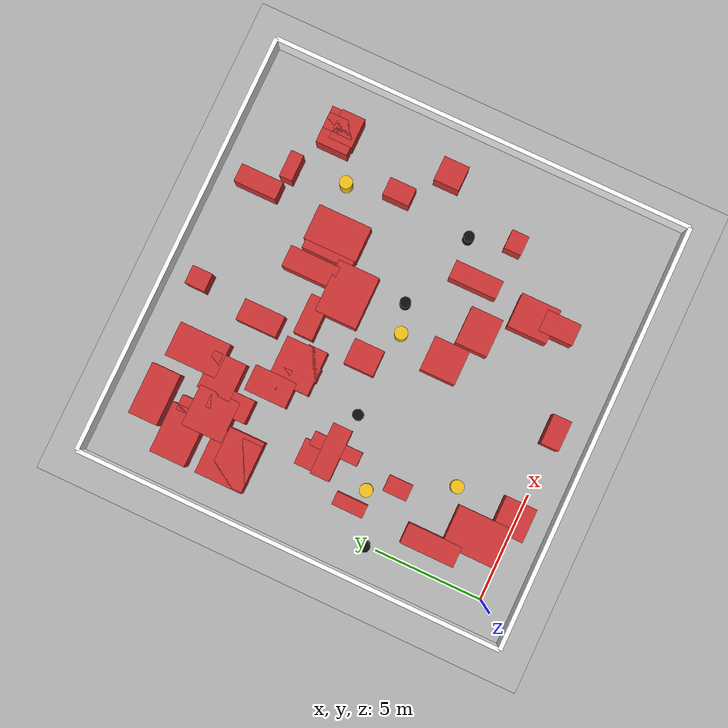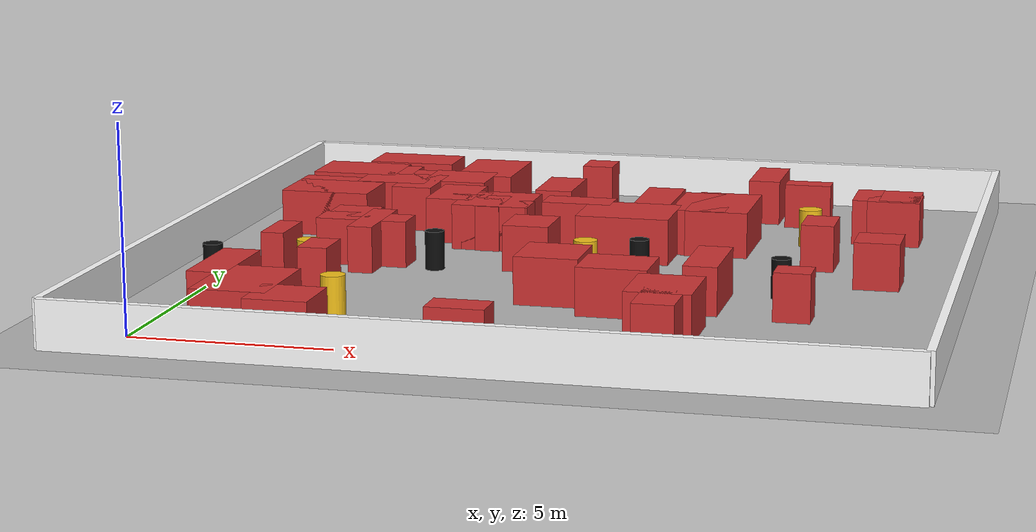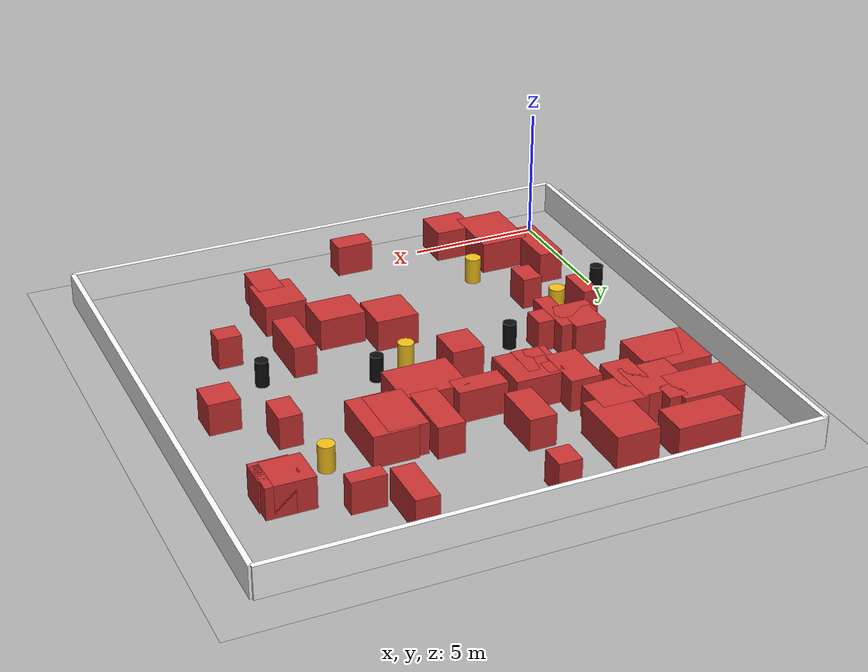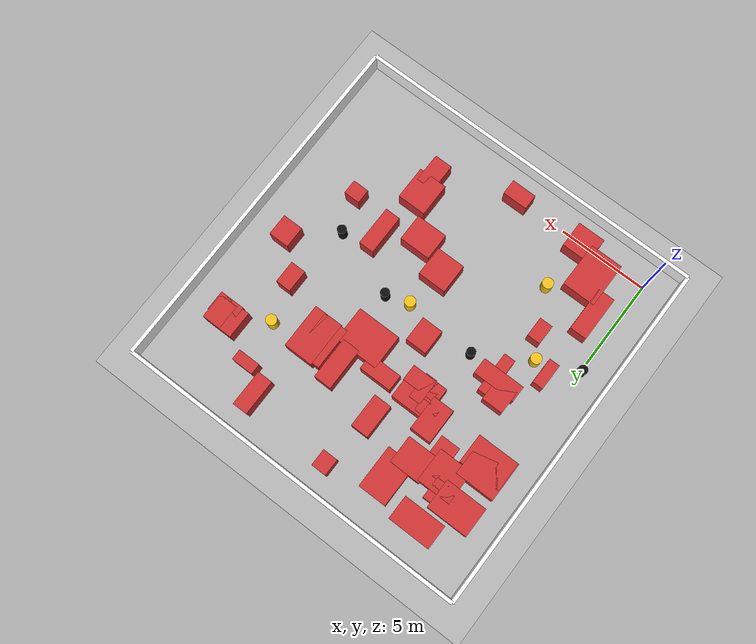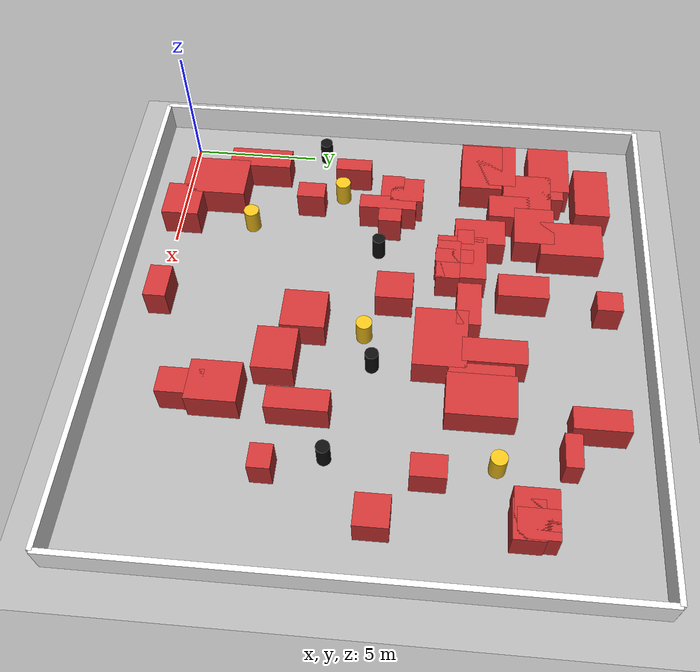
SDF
<?xml version="1.0"?>
<sdf version="1.8">
  <world name="random_room">
    <physics name="10ms" type="ignored">
      <max_step_size>0.01</max_step_size>
      <real_time_factor>1.0</real_time_factor>
    </physics>
    <plugin filename="gz-sim-physics-system"          name="gz::sim::systems::Physics"/>
    <plugin filename="gz-sim-user-commands-system"    name="gz::sim::systems::UserCommands"/>
    <plugin filename="gz-sim-scene-broadcaster-system" name="gz::sim::systems::SceneBroadcaster"/>
    <plugin filename="gz-sim-sensors-system"          name="gz::sim::systems::Sensors">
      <render_engine>ogre2</render_engine>
    </plugin>
    <light name="sun" type="directional">
      <cast_shadows>true</cast_shadows>
      <pose>0 0 10 0 0 0</pose>
      <diffuse>1 1 1 1</diffuse>
      <specular>0.5 0.5 0.5 1</specular>
      <direction>-0.5 0.1 -0.9</direction>
    </light>

    <model name="ground_plane">
      <static>true</static>
      <pose>8.5000 8.5000 0 0 0 0</pose>
      <link name="link">
        <collision name="c">
          <geometry><plane><normal>0 0 1</normal><size>20.0 20.0</size></plane></geometry>
        </collision>
        <visual name="v">
          <geometry><plane><normal>0 0 1</normal><size>20.0 20.0</size></plane></geometry>
          <material><ambient>0.7 0.7 0.7 1</ambient><diffuse>0.7 0.7 0.7 1</diffuse></material>
        </visual>
      </link>
    </model>
    <model name="wall_north">
      <static>true</static>
      <pose>8.5000 18.5000 0.6000 0 0 0</pose>
      <link name="link">
        <collision name="c">
          <geometry><box><size>20.0000 0.2000 1.2000</size></box></geometry>
        </collision>
        <visual name="v">
          <geometry><box><size>20.0000 0.2000 1.2000</size></box></geometry>
          <material>
            <ambient>1.0 1.0 1.0 1</ambient>
            <diffuse>1.0 1.0 1.0 1</diffuse>
          </material>
        </visual>
      </link>
    </model>
    <model name="wall_south">
      <static>true</static>
      <pose>8.5000 -1.5000 0.6000 0 0 0</pose>
      <link name="link">
        <collision name="c">
          <geometry><box><size>20.0000 0.2000 1.2000</size></box></geometry>
        </collision>
        <visual name="v">
          <geometry><box><size>20.0000 0.2000 1.2000</size></box></geometry>
          <material>
            <ambient>1.0 1.0 1.0 1</ambient>
            <diffuse>1.0 1.0 1.0 1</diffuse>
          </material>
        </visual>
      </link>
    </model>
    <model name="wall_east">
      <static>true</static>
      <pose>18.5000 8.5000 0.6000 0 0 0</pose>
      <link name="link">
        <collision name="c">
          <geometry><box><size>0.2000 20.0000 1.2000</size></box></geometry>
        </collision>
        <visual name="v">
          <geometry><box><size>0.2000 20.0000 1.2000</size></box></geometry>
          <material>
            <ambient>1.0 1.0 1.0 1</ambient>
            <diffuse>1.0 1.0 1.0 1</diffuse>
          </material>
        </visual>
      </link>
    </model>
    <model name="wall_west">
      <static>true</static>
      <pose>-1.5000 8.5000 0.6000 0 0 0</pose>
      <link name="link">
        <collision name="c">
          <geometry><box><size>0.2000 20.0000 1.2000</size></box></geometry>
        </collision>
        <visual name="v">
          <geometry><box><size>0.2000 20.0000 1.2000</size></box></geometry>
          <material>
            <ambient>1.0 1.0 1.0 1</ambient>
            <diffuse>1.0 1.0 1.0 1</diffuse>
          </material>
        </visual>
      </link>
    </model>
    <model name="obs_0">
      <static>true</static>
      <pose>16.2750 14.2500 0.6000 0 0 0</pose>
      <link name="link">
        <collision name="c">
          <geometry><box><size>1.0500 1.4000 1.2000</size></box></geometry>
        </collision>
        <visual name="v">
          <geometry><box><size>1.0500 1.4000 1.2000</size></box></geometry>
          <material>
            <ambient>0.8 0.2 0.2 1</ambient>
            <diffuse>0.8 0.2 0.2 1</diffuse>
          </material>
        </visual>
      </link>
    </model>
    <model name="obs_1">
      <static>true</static>
      <pose>4.6000 15.6500 0.6000 0 0 0</pose>
      <link name="link">
        <collision name="c">
          <geometry><box><size>1.6000 2.4000 1.2000</size></box></geometry>
        </collision>
        <visual name="v">
          <geometry><box><size>1.6000 2.4000 1.2000</size></box></geometry>
          <material>
            <ambient>0.8 0.2 0.2 1</ambient>
            <diffuse>0.8 0.2 0.2 1</diffuse>
          </material>
        </visual>
      </link>
    </model>
    <model name="obs_2">
      <static>true</static>
      <pose>2.3500 13.9500 0.6000 0 0 0</pose>
      <link name="link">
        <collision name="c">
          <geometry><box><size>1.9000 1.9000 1.2000</size></box></geometry>
        </collision>
        <visual name="v">
          <geometry><box><size>1.9000 1.9000 1.2000</size></box></geometry>
          <material>
            <ambient>0.8 0.2 0.2 1</ambient>
            <diffuse>0.8 0.2 0.2 1</diffuse>
          </material>
        </visual>
      </link>
    </model>
    <model name="obs_3">
      <static>true</static>
      <pose>12.1000 1.8500 0.6000 0 0 0</pose>
      <link name="link">
        <collision name="c">
          <geometry><box><size>1.0000 1.6000 1.2000</size></box></geometry>
        </collision>
        <visual name="v">
          <geometry><box><size>1.0000 1.6000 1.2000</size></box></geometry>
          <material>
            <ambient>0.8 0.2 0.2 1</ambient>
            <diffuse>0.8 0.2 0.2 1</diffuse>
          </material>
        </visual>
      </link>
    </model>
    <model name="obs_4">
      <static>true</static>
      <pose>5.8000 11.4500 0.6000 0 0 0</pose>
      <link name="link">
        <collision name="c">
          <geometry><box><size>2.0000 1.9000 1.2000</size></box></geometry>
        </collision>
        <visual name="v">
          <geometry><box><size>2.0000 1.9000 1.2000</size></box></geometry>
          <material>
            <ambient>0.8 0.2 0.2 1</ambient>
            <diffuse>0.8 0.2 0.2 1</diffuse>
          </material>
        </visual>
      </link>
    </model>
    <model name="obs_5">
      <static>true</static>
      <pose>8.7000 5.7750 0.6000 0 0 0</pose>
      <link name="link">
        <collision name="c">
          <geometry><box><size>1.6000 1.6500 1.2000</size></box></geometry>
        </collision>
        <visual name="v">
          <geometry><box><size>1.6000 1.6500 1.2000</size></box></geometry>
          <material>
            <ambient>0.8 0.2 0.2 1</ambient>
            <diffuse>0.8 0.2 0.2 1</diffuse>
          </material>
        </visual>
      </link>
    </model>
    <model name="obs_6">
      <static>true</static>
      <pose>12.4750 6.0250 0.6000 0 0 0</pose>
      <link name="link">
        <collision name="c">
          <geometry><box><size>0.8500 2.2500 1.2000</size></box></geometry>
        </collision>
        <visual name="v">
          <geometry><box><size>0.8500 2.2500 1.2000</size></box></geometry>
          <material>
            <ambient>0.8 0.2 0.2 1</ambient>
            <diffuse>0.8 0.2 0.2 1</diffuse>
          </material>
        </visual>
      </link>
    </model>
    <model name="obs_7">
      <static>true</static>
      <pose>14.5750 10.6750 0.6000 0 0 0</pose>
      <link name="link">
        <collision name="c">
          <geometry><box><size>0.8500 1.2500 1.2000</size></box></geometry>
        </collision>
        <visual name="v">
          <geometry><box><size>0.8500 1.2500 1.2000</size></box></geometry>
          <material>
            <ambient>0.8 0.2 0.2 1</ambient>
            <diffuse>0.8 0.2 0.2 1</diffuse>
          </material>
        </visual>
      </link>
    </model>
    <model name="obs_8">
      <static>true</static>
      <pose>2.2500 14.8000 0.6000 0 0 0</pose>
      <link name="link">
        <collision name="c">
          <geometry><box><size>0.7000 1.2000 1.2000</size></box></geometry>
        </collision>
        <visual name="v">
          <geometry><box><size>0.7000 1.2000 1.2000</size></box></geometry>
          <material>
            <ambient>0.8 0.2 0.2 1</ambient>
            <diffuse>0.8 0.2 0.2 1</diffuse>
          </material>
        </visual>
      </link>
    </model>
    <model name="obs_9">
      <static>true</static>
      <pose>7.3500 9.0000 0.6000 0 0 0</pose>
      <link name="link">
        <collision name="c">
          <geometry><box><size>1.2000 1.4000 1.2000</size></box></geometry>
        </collision>
        <visual name="v">
          <geometry><box><size>1.2000 1.4000 1.2000</size></box></geometry>
          <material>
            <ambient>0.8 0.2 0.2 1</ambient>
            <diffuse>0.8 0.2 0.2 1</diffuse>
          </material>
        </visual>
      </link>
    </model>
    <model name="obs_10">
      <static>true</static>
      <pose>16.1500 13.9500 0.6000 0 0 0</pose>
      <link name="link">
        <collision name="c">
          <geometry><box><size>1.4000 1.1000 1.2000</size></box></geometry>
        </collision>
        <visual name="v">
          <geometry><box><size>1.4000 1.1000 1.2000</size></box></geometry>
          <material>
            <ambient>0.8 0.2 0.2 1</ambient>
            <diffuse>0.8 0.2 0.2 1</diffuse>
          </material>
        </visual>
      </link>
    </model>
    <model name="obs_11">
      <static>true</static>
      <pose>5.7750 11.1750 0.6000 0 0 0</pose>
      <link name="link">
        <collision name="c">
          <geometry><box><size>0.6500 1.4500 1.2000</size></box></geometry>
        </collision>
        <visual name="v">
          <geometry><box><size>0.6500 1.4500 1.2000</size></box></geometry>
          <material>
            <ambient>0.8 0.2 0.2 1</ambient>
            <diffuse>0.8 0.2 0.2 1</diffuse>
          </material>
        </visual>
      </link>
    </model>
    <model name="obs_12">
      <static>true</static>
      <pose>2.1000 16.5250 0.6000 0 0 0</pose>
      <link name="link">
        <collision name="c">
          <geometry><box><size>2.4000 1.3500 1.2000</size></box></geometry>
        </collision>
        <visual name="v">
          <geometry><box><size>2.4000 1.3500 1.2000</size></box></geometry>
          <material>
            <ambient>0.8 0.2 0.2 1</ambient>
            <diffuse>0.8 0.2 0.2 1</diffuse>
          </material>
        </visual>
      </link>
    </model>
    <model name="obs_13">
      <static>true</static>
      <pose>3.7750 0.2250 0.6000 0 0 0</pose>
      <link name="link">
        <collision name="c">
          <geometry><box><size>1.5500 1.4500 1.2000</size></box></geometry>
        </collision>
        <visual name="v">
          <geometry><box><size>1.5500 1.4500 1.2000</size></box></geometry>
          <material>
            <ambient>0.8 0.2 0.2 1</ambient>
            <diffuse>0.8 0.2 0.2 1</diffuse>
          </material>
        </visual>
      </link>
    </model>
    <model name="obs_14">
      <static>true</static>
      <pose>11.7750 12.3500 0.6000 0 0 0</pose>
      <link name="link">
        <collision name="c">
          <geometry><box><size>1.6500 2.5000 1.2000</size></box></geometry>
        </collision>
        <visual name="v">
          <geometry><box><size>1.6500 2.5000 1.2000</size></box></geometry>
          <material>
            <ambient>0.8 0.2 0.2 1</ambient>
            <diffuse>0.8 0.2 0.2 1</diffuse>
          </material>
        </visual>
      </link>
    </model>
    <model name="obs_15">
      <static>true</static>
      <pose>11.2750 12.3250 0.6000 0 0 0</pose>
      <link name="link">
        <collision name="c">
          <geometry><box><size>1.4500 2.3500 1.2000</size></box></geometry>
        </collision>
        <visual name="v">
          <geometry><box><size>1.4500 2.3500 1.2000</size></box></geometry>
          <material>
            <ambient>0.8 0.2 0.2 1</ambient>
            <diffuse>0.8 0.2 0.2 1</diffuse>
          </material>
        </visual>
      </link>
    </model>
    <model name="obs_16">
      <static>true</static>
      <pose>3.1000 13.3750 0.6000 0 0 0</pose>
      <link name="link">
        <collision name="c">
          <geometry><box><size>1.1000 1.8500 1.2000</size></box></geometry>
        </collision>
        <visual name="v">
          <geometry><box><size>1.1000 1.8500 1.2000</size></box></geometry>
          <material>
            <ambient>0.8 0.2 0.2 1</ambient>
            <diffuse>0.8 0.2 0.2 1</diffuse>
          </material>
        </visual>
      </link>
    </model>
    <model name="obs_17">
      <static>true</static>
      <pose>9.5250 10.8250 0.6000 0 0 0</pose>
      <link name="link">
        <collision name="c">
          <geometry><box><size>2.4500 1.9500 1.2000</size></box></geometry>
        </collision>
        <visual name="v">
          <geometry><box><size>2.4500 1.9500 1.2000</size></box></geometry>
          <material>
            <ambient>0.8 0.2 0.2 1</ambient>
            <diffuse>0.8 0.2 0.2 1</diffuse>
          </material>
        </visual>
      </link>
    </model>
    <model name="obs_18">
      <static>true</static>
      <pose>1.2750 3.0000 0.6000 0 0 0</pose>
      <link name="link">
        <collision name="c">
          <geometry><box><size>0.9500 2.5000 1.2000</size></box></geometry>
        </collision>
        <visual name="v">
          <geometry><box><size>0.9500 2.5000 1.2000</size></box></geometry>
          <material>
            <ambient>0.8 0.2 0.2 1</ambient>
            <diffuse>0.8 0.2 0.2 1</diffuse>
          </material>
        </visual>
      </link>
    </model>
    <model name="obs_19">
      <static>true</static>
      <pose>4.5000 12.1250 0.6000 0 0 0</pose>
      <link name="link">
        <collision name="c">
          <geometry><box><size>1.2000 1.9500 1.2000</size></box></geometry>
        </collision>
        <visual name="v">
          <geometry><box><size>1.2000 1.9500 1.2000</size></box></geometry>
          <material>
            <ambient>0.8 0.2 0.2 1</ambient>
            <diffuse>0.8 0.2 0.2 1</diffuse>
          </material>
        </visual>
      </link>
    </model>
    <model name="obs_20">
      <static>true</static>
      <pose>7.4250 16.9750 0.6000 0 0 0</pose>
      <link name="link">
        <collision name="c">
          <geometry><box><size>0.8500 0.9500 1.2000</size></box></geometry>
        </collision>
        <visual name="v">
          <geometry><box><size>0.8500 0.9500 1.2000</size></box></geometry>
          <material>
            <ambient>0.8 0.2 0.2 1</ambient>
            <diffuse>0.8 0.2 0.2 1</diffuse>
          </material>
        </visual>
      </link>
    </model>
    <model name="obs_21">
      <static>true</static>
      <pose>12.0000 3.0250 0.6000 0 0 0</pose>
      <link name="link">
        <collision name="c">
          <geometry><box><size>1.6000 1.8500 1.2000</size></box></geometry>
        </collision>
        <visual name="v">
          <geometry><box><size>1.6000 1.8500 1.2000</size></box></geometry>
          <material>
            <ambient>0.8 0.2 0.2 1</ambient>
            <diffuse>0.8 0.2 0.2 1</diffuse>
          </material>
        </visual>
      </link>
    </model>
    <model name="obs_22">
      <static>true</static>
      <pose>2.8750 5.3000 0.6000 0 0 0</pose>
      <link name="link">
        <collision name="c">
          <geometry><box><size>0.7500 1.1000 1.2000</size></box></geometry>
        </collision>
        <visual name="v">
          <geometry><box><size>0.7500 1.1000 1.2000</size></box></geometry>
          <material>
            <ambient>0.8 0.2 0.2 1</ambient>
            <diffuse>0.8 0.2 0.2 1</diffuse>
          </material>
        </visual>
      </link>
    </model>
    <model name="obs_23">
      <static>true</static>
      <pose>0.9750 14.8250 0.6000 0 0 0</pose>
      <link name="link">
        <collision name="c">
          <geometry><box><size>2.3500 1.6500 1.2000</size></box></geometry>
        </collision>
        <visual name="v">
          <geometry><box><size>2.3500 1.6500 1.2000</size></box></geometry>
          <material>
            <ambient>0.8 0.2 0.2 1</ambient>
            <diffuse>0.8 0.2 0.2 1</diffuse>
          </material>
        </visual>
      </link>
    </model>
    <model name="obs_24">
      <static>true</static>
      <pose>3.0500 8.5500 0.6000 0 0 0</pose>
      <link name="link">
        <collision name="c">
          <geometry><box><size>2.4000 0.9000 1.2000</size></box></geometry>
        </collision>
        <visual name="v">
          <geometry><box><size>2.4000 0.9000 1.2000</size></box></geometry>
          <material>
            <ambient>0.8 0.2 0.2 1</ambient>
            <diffuse>0.8 0.2 0.2 1</diffuse>
          </material>
        </visual>
      </link>
    </model>
    <model name="obs_25">
      <static>true</static>
      <pose>7.9000 0.1250 0.6000 0 0 0</pose>
      <link name="link">
        <collision name="c">
          <geometry><box><size>1.4000 0.8500 1.2000</size></box></geometry>
        </collision>
        <visual name="v">
          <geometry><box><size>1.4000 0.8500 1.2000</size></box></geometry>
          <material>
            <ambient>0.8 0.2 0.2 1</ambient>
            <diffuse>0.8 0.2 0.2 1</diffuse>
          </material>
        </visual>
      </link>
    </model>
    <model name="obs_26">
      <static>true</static>
      <pose>4.8000 11.5750 0.6000 0 0 0</pose>
      <link name="link">
        <collision name="c">
          <geometry><box><size>0.7000 0.6500 1.2000</size></box></geometry>
        </collision>
        <visual name="v">
          <geometry><box><size>0.7000 0.6500 1.2000</size></box></geometry>
          <material>
            <ambient>0.8 0.2 0.2 1</ambient>
            <diffuse>0.8 0.2 0.2 1</diffuse>
          </material>
        </visual>
      </link>
    </model>
    <model name="obs_27">
      <static>true</static>
      <pose>0.9000 12.4000 0.6000 0 0 0</pose>
      <link name="link">
        <collision name="c">
          <geometry><box><size>2.2000 2.2000 1.2000</size></box></geometry>
        </collision>
        <visual name="v">
          <geometry><box><size>2.2000 2.2000 1.2000</size></box></geometry>
          <material>
            <ambient>0.8 0.2 0.2 1</ambient>
            <diffuse>0.8 0.2 0.2 1</diffuse>
          </material>
        </visual>
      </link>
    </model>
    <model name="obs_28">
      <static>true</static>
      <pose>3.2750 8.4250 0.6000 0 0 0</pose>
      <link name="link">
        <collision name="c">
          <geometry><box><size>0.6500 2.2500 1.2000</size></box></geometry>
        </collision>
        <visual name="v">
          <geometry><box><size>0.6500 2.2500 1.2000</size></box></geometry>
          <material>
            <ambient>0.8 0.2 0.2 1</ambient>
            <diffuse>0.8 0.2 0.2 1</diffuse>
          </material>
        </visual>
      </link>
    </model>
    <model name="obs_29">
      <static>true</static>
      <pose>7.0000 13.8000 0.6000 0 0 0</pose>
      <link name="link">
        <collision name="c">
          <geometry><box><size>1.0000 1.9000 1.2000</size></box></geometry>
        </collision>
        <visual name="v">
          <geometry><box><size>1.0000 1.9000 1.2000</size></box></geometry>
          <material>
            <ambient>0.8 0.2 0.2 1</ambient>
            <diffuse>0.8 0.2 0.2 1</diffuse>
          </material>
        </visual>
      </link>
    </model>
    <model name="obs_30">
      <static>true</static>
      <pose>5.9500 10.9500 0.6000 0 0 0</pose>
      <link name="link">
        <collision name="c">
          <geometry><box><size>1.8000 0.9000 1.2000</size></box></geometry>
        </collision>
        <visual name="v">
          <geometry><box><size>1.8000 0.9000 1.2000</size></box></geometry>
          <material>
            <ambient>0.8 0.2 0.2 1</ambient>
            <diffuse>0.8 0.2 0.2 1</diffuse>
          </material>
        </visual>
      </link>
    </model>
    <model name="obs_31">
      <static>true</static>
      <pose>2.5500 9.1500 0.6000 0 0 0</pose>
      <link name="link">
        <collision name="c">
          <geometry><box><size>1.2000 1.3000 1.2000</size></box></geometry>
        </collision>
        <visual name="v">
          <geometry><box><size>1.2000 1.3000 1.2000</size></box></geometry>
          <material>
            <ambient>0.8 0.2 0.2 1</ambient>
            <diffuse>0.8 0.2 0.2 1</diffuse>
          </material>
        </visual>
      </link>
    </model>
    <model name="obs_32">
      <static>true</static>
      <pose>9.9500 12.7750 0.6000 0 0 0</pose>
      <link name="link">
        <collision name="c">
          <geometry><box><size>1.0000 2.3500 1.2000</size></box></geometry>
        </collision>
        <visual name="v">
          <geometry><box><size>1.0000 2.3500 1.2000</size></box></geometry>
          <material>
            <ambient>0.8 0.2 0.2 1</ambient>
            <diffuse>0.8 0.2 0.2 1</diffuse>
          </material>
        </visual>
      </link>
    </model>
    <model name="obs_33">
      <static>true</static>
      <pose>12.3750 16.4500 0.6000 0 0 0</pose>
      <link name="link">
        <collision name="c">
          <geometry><box><size>0.8500 2.0000 1.2000</size></box></geometry>
        </collision>
        <visual name="v">
          <geometry><box><size>0.8500 2.0000 1.2000</size></box></geometry>
          <material>
            <ambient>0.8 0.2 0.2 1</ambient>
            <diffuse>0.8 0.2 0.2 1</diffuse>
          </material>
        </visual>
      </link>
    </model>
    <model name="obs_34">
      <static>true</static>
      <pose>16.2750 8.9500 0.6000 0 0 0</pose>
      <link name="link">
        <collision name="c">
          <geometry><box><size>1.1500 1.2000 1.2000</size></box></geometry>
        </collision>
        <visual name="v">
          <geometry><box><size>1.1500 1.2000 1.2000</size></box></geometry>
          <material>
            <ambient>0.8 0.2 0.2 1</ambient>
            <diffuse>0.8 0.2 0.2 1</diffuse>
          </material>
        </visual>
      </link>
    </model>
    <model name="obs_35">
      <static>true</static>
      <pose>7.9750 11.8000 0.6000 0 0 0</pose>
      <link name="link">
        <collision name="c">
          <geometry><box><size>1.8500 0.9000 1.2000</size></box></geometry>
        </collision>
        <visual name="v">
          <geometry><box><size>1.8500 0.9000 1.2000</size></box></geometry>
          <material>
            <ambient>0.8 0.2 0.2 1</ambient>
            <diffuse>0.8 0.2 0.2 1</diffuse>
          </material>
        </visual>
      </link>
    </model>
    <model name="obs_36">
      <static>true</static>
      <pose>4.0250 14.2250 0.6000 0 0 0</pose>
      <link name="link">
        <collision name="c">
          <geometry><box><size>1.7500 1.5500 1.2000</size></box></geometry>
        </collision>
        <visual name="v">
          <geometry><box><size>1.7500 1.5500 1.2000</size></box></geometry>
          <material>
            <ambient>0.8 0.2 0.2 1</ambient>
            <diffuse>0.8 0.2 0.2 1</diffuse>
          </material>
        </visual>
      </link>
    </model>
    <model name="obs_37">
      <static>true</static>
      <pose>1.3500 6.8750 0.6000 0 0 0</pose>
      <link name="link">
        <collision name="c">
          <geometry><box><size>0.6000 1.4500 1.2000</size></box></geometry>
        </collision>
        <visual name="v">
          <geometry><box><size>0.6000 1.4500 1.2000</size></box></geometry>
          <material>
            <ambient>0.8 0.2 0.2 1</ambient>
            <diffuse>0.8 0.2 0.2 1</diffuse>
          </material>
        </visual>
      </link>
    </model>
    <model name="obs_38">
      <static>true</static>
      <pose>10.4750 4.9500 0.6000 0 0 0</pose>
      <link name="link">
        <collision name="c">
          <geometry><box><size>1.7500 1.5000 1.2000</size></box></geometry>
        </collision>
        <visual name="v">
          <geometry><box><size>1.7500 1.5000 1.2000</size></box></geometry>
          <material>
            <ambient>0.8 0.2 0.2 1</ambient>
            <diffuse>0.8 0.2 0.2 1</diffuse>
          </material>
        </visual>
      </link>
    </model>
    <model name="obs_39">
      <static>true</static>
      <pose>14.7000 5.1000 0.6000 0 0 0</pose>
      <link name="link">
        <collision name="c">
          <geometry><box><size>0.9000 0.8000 1.2000</size></box></geometry>
        </collision>
        <visual name="v">
          <geometry><box><size>0.9000 0.8000 1.2000</size></box></geometry>
          <material>
            <ambient>0.8 0.2 0.2 1</ambient>
            <diffuse>0.8 0.2 0.2 1</diffuse>
          </material>
        </visual>
      </link>
    </model>
    <model name="obs_40">
      <static>true</static>
      <pose>13.6250 15.4500 0.6000 0 0 0</pose>
      <link name="link">
        <collision name="c">
          <geometry><box><size>1.2500 0.6000 1.2000</size></box></geometry>
        </collision>
        <visual name="v">
          <geometry><box><size>1.2500 0.6000 1.2000</size></box></geometry>
          <material>
            <ambient>0.8 0.2 0.2 1</ambient>
            <diffuse>0.8 0.2 0.2 1</diffuse>
          </material>
        </visual>
      </link>
    </model>
    <model name="obs_41">
      <static>true</static>
      <pose>1.0250 12.1250 0.6000 0 0 0</pose>
      <link name="link">
        <collision name="c">
          <geometry><box><size>2.3500 1.6500 1.2000</size></box></geometry>
        </collision>
        <visual name="v">
          <geometry><box><size>2.3500 1.6500 1.2000</size></box></geometry>
          <material>
            <ambient>0.8 0.2 0.2 1</ambient>
            <diffuse>0.8 0.2 0.2 1</diffuse>
          </material>
        </visual>
      </link>
    </model>
    <model name="obs_42">
      <static>true</static>
      <pose>15.7750 14.2000 0.6000 0 0 0</pose>
      <link name="link">
        <collision name="c">
          <geometry><box><size>1.4500 1.5000 1.2000</size></box></geometry>
        </collision>
        <visual name="v">
          <geometry><box><size>1.4500 1.5000 1.2000</size></box></geometry>
          <material>
            <ambient>0.8 0.2 0.2 1</ambient>
            <diffuse>0.8 0.2 0.2 1</diffuse>
          </material>
        </visual>
      </link>
    </model>
    <model name="obs_43">
      <static>true</static>
      <pose>5.2000 11.9000 0.6000 0 0 0</pose>
      <link name="link">
        <collision name="c">
          <geometry><box><size>0.6000 0.7000 1.2000</size></box></geometry>
        </collision>
        <visual name="v">
          <geometry><box><size>0.6000 0.7000 1.2000</size></box></geometry>
          <material>
            <ambient>0.8 0.2 0.2 1</ambient>
            <diffuse>0.8 0.2 0.2 1</diffuse>
          </material>
        </visual>
      </link>
    </model>
    <model name="obs_44">
      <static>true</static>
      <pose>2.4250 1.3500 0.6000 0 0 0</pose>
      <link name="link">
        <collision name="c">
          <geometry><box><size>1.8500 2.5000 1.2000</size></box></geometry>
        </collision>
        <visual name="v">
          <geometry><box><size>1.8500 2.5000 1.2000</size></box></geometry>
          <material>
            <ambient>0.8 0.2 0.2 1</ambient>
            <diffuse>0.8 0.2 0.2 1</diffuse>
          </material>
        </visual>
      </link>
    </model>
    <model name="unknown_obs_0">
      <static>true</static>
      <pose>4.0 3.0 0.5 0 0 0</pose>
      <link name="link">
        <collision name="c">
          <geometry><cylinder><radius>0.30</radius><length>1.0</length></cylinder></geometry>
        </collision>
        <visual name="v">
          <geometry><cylinder><radius>0.30</radius><length>1.0</length></cylinder></geometry>
          <material><ambient>0.95 0.75 0.1 1</ambient><diffuse>0.95 0.75 0.1 1</diffuse></material>
        </visual>
      </link>
    </model>
    <model name="unknown_obs_1">
      <static>true</static>
      <pose>9.0 8.0 0.5 0 0 0</pose>
      <link name="link">
        <collision name="c">
          <geometry><cylinder><radius>0.30</radius><length>1.0</length></cylinder></geometry>
        </collision>
        <visual name="v">
          <geometry><cylinder><radius>0.30</radius><length>1.0</length></cylinder></geometry>
          <material><ambient>0.95 0.75 0.1 1</ambient><diffuse>0.95 0.75 0.1 1</diffuse></material>
        </visual>
      </link>
    </model>
    <model name="unknown_obs_2">
      <static>true</static>
      <pose>14.0 13.0 0.5 0 0 0</pose>
      <link name="link">
        <collision name="c">
          <geometry><cylinder><radius>0.30</radius><length>1.0</length></cylinder></geometry>
        </collision>
        <visual name="v">
          <geometry><cylinder><radius>0.30</radius><length>1.0</length></cylinder></geometry>
          <material><ambient>0.95 0.75 0.1 1</ambient><diffuse>0.95 0.75 0.1 1</diffuse></material>
        </visual>
      </link>
    </model>

    <model name="dyn_obs_0">
      <pose>14.1000 7.1000 0.5000 0 0 0</pose>
      <link name="link">
        <kinematic>true</kinematic>
        <gravity>false</gravity>
        <inertial>
          <mass>1.0</mass>
          <inertia>
            <ixx>0.1</ixx><iyy>0.1</iyy><izz>0.1</izz>
            <ixy>0</ixy><ixz>0</ixz><iyz>0</iyz>
          </inertia>
        </inertial>
        <collision name="c">
          <geometry><cylinder><radius>0.25</radius><length>1.0</length></cylinder></geometry>
        </collision>
        <visual name="v">
          <geometry><cylinder><radius>0.25</radius><length>1.0</length></cylinder></geometry>
          <material>
            <ambient>0.05 0.05 0.05 1</ambient>
            <diffuse>0.05 0.05 0.05 1</diffuse>
          </material>
        </visual>
      </link>
      <plugin filename="gz-sim-velocity-control-system"
              name="gz::sim::systems::VelocityControl"/>
      <plugin filename="gz-sim-pose-publisher-system"
              name="gz::sim::systems::PosePublisher">
        <publish_link_pose>false</publish_link_pose>
        <publish_model_pose>true</publish_model_pose>
        <use_pose_vector_msg>false</use_pose_vector_msg>
        <update_frequency>20</update_frequency>
      </plugin>
    </model>
    <model name="dyn_obs_1">
      <pose>0.0000 5.5500 0.5000 0 0 0</pose>
      <link name="link">
        <kinematic>true</kinematic>
        <gravity>false</gravity>
        <inertial>
          <mass>1.0</mass>
          <inertia>
            <ixx>0.1</ixx><iyy>0.1</iyy><izz>0.1</izz>
            <ixy>0</ixy><ixz>0</ixz><iyz>0</iyz>
          </inertia>
        </inertial>
        <collision name="c">
          <geometry><cylinder><radius>0.25</radius><length>1.0</length></cylinder></geometry>
        </collision>
        <visual name="v">
          <geometry><cylinder><radius>0.25</radius><length>1.0</length></cylinder></geometry>
          <material>
            <ambient>0.05 0.05 0.05 1</ambient>
            <diffuse>0.05 0.05 0.05 1</diffuse>
          </material>
        </visual>
      </link>
      <plugin filename="gz-sim-velocity-control-system"
              name="gz::sim::systems::VelocityControl"/>
      <plugin filename="gz-sim-pose-publisher-system"
              name="gz::sim::systems::PosePublisher">
        <publish_link_pose>false</publish_link_pose>
        <publish_model_pose>true</publish_model_pose>
        <use_pose_vector_msg>false</use_pose_vector_msg>
        <update_frequency>20</update_frequency>
      </plugin>
    </model>
    <model name="dyn_obs_2">
      <pose>10.3000 8.4000 0.5000 0 0 0</pose>
      <link name="link">
        <kinematic>true</kinematic>
        <gravity>false</gravity>
        <inertial>
          <mass>1.0</mass>
          <inertia>
            <ixx>0.1</ixx><iyy>0.1</iyy><izz>0.1</izz>
            <ixy>0</ixy><ixz>0</ixz><iyz>0</iyz>
          </inertia>
        </inertial>
        <collision name="c">
          <geometry><cylinder><radius>0.25</radius><length>1.0</length></cylinder></geometry>
        </collision>
        <visual name="v">
          <geometry><cylinder><radius>0.25</radius><length>1.0</length></cylinder></geometry>
          <material>
            <ambient>0.05 0.05 0.05 1</ambient>
            <diffuse>0.05 0.05 0.05 1</diffuse>
          </material>
        </visual>
      </link>
      <plugin filename="gz-sim-velocity-control-system"
              name="gz::sim::systems::VelocityControl"/>
      <plugin filename="gz-sim-pose-publisher-system"
              name="gz::sim::systems::PosePublisher">
        <publish_link_pose>false</publish_link_pose>
        <publish_model_pose>true</publish_model_pose>
        <use_pose_vector_msg>false</use_pose_vector_msg>
        <update_frequency>20</update_frequency>
      </plugin>
    </model>
    <model name="unknown_obs_4">
      <static>true</static>
      <pose>2.2 6.5 0.5 0 0 0</pose>
      <link name="link">
        <collision name="c"><geometry><cylinder><radius>0.30</radius><length>1.0</length></cylinder></geometry></collision>
        <visual name="v">
          <geometry><cylinder><radius>0.30</radius><length>1.0</length></cylinder></geometry>
          <material><ambient>0.95 0.75 0.1 1</ambient><diffuse>0.95 0.75 0.1 1</diffuse></material>
        </visual>
      </link>
    </model>
    <model name="dyn_obs_5">
      <pose>5.0000 8.2000 0.5000 0 0 0</pose>
      <link name="link">
        <kinematic>true</kinematic>
        <gravity>false</gravity>
        <inertial>
          <mass>1.0</mass>
          <inertia><ixx>0.1</ixx><iyy>0.1</iyy><izz>0.1</izz><ixy>0</ixy><ixz>0</ixz><iyz>0</iyz></inertia>
        </inertial>
        <collision name="c"><geometry><cylinder><radius>0.25</radius><length>1.0</length></cylinder></geometry></collision>
        <visual name="v">
          <geometry><cylinder><radius>0.25</radius><length>1.0</length></cylinder></geometry>
          <material><ambient>0.05 0.05 0.05 1</ambient><diffuse>0.05 0.05 0.05 1</diffuse></material>
        </visual>
      </link>
      <plugin filename="gz-sim-velocity-control-system" name="gz::sim::systems::VelocityControl"/>
      <plugin filename="gz-sim-pose-publisher-system" name="gz::sim::systems::PosePublisher">
        <publish_link_pose>false</publish_link_pose><publish_model_pose>true</publish_model_pose>
        <use_pose_vector_msg>false</use_pose_vector_msg><update_frequency>20</update_frequency>
      </plugin>
    </model>
  </world>
</sdf>
